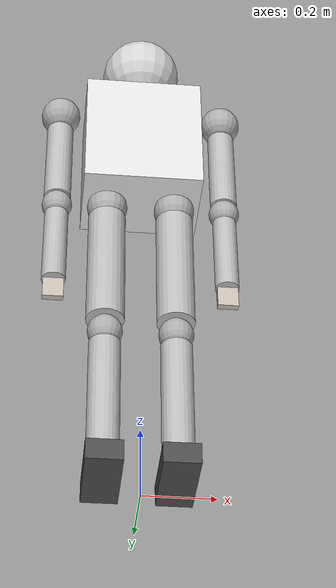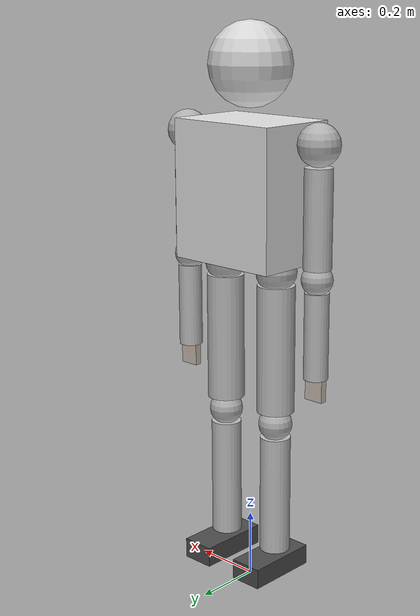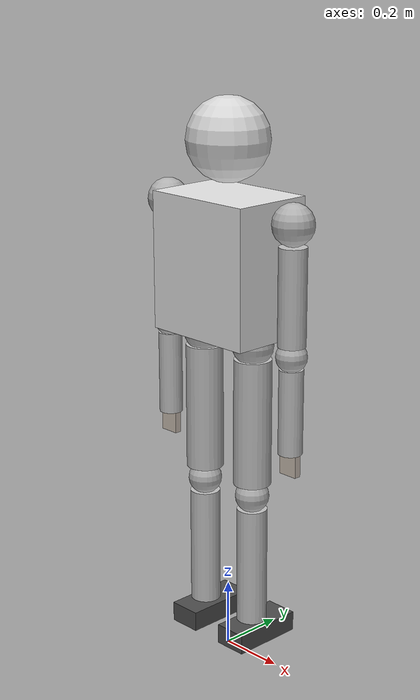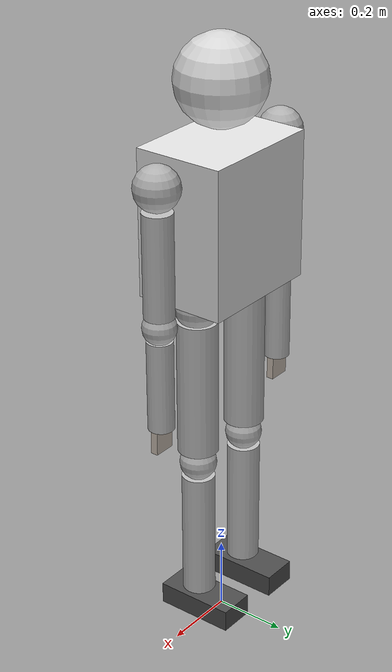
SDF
<?xml version="1.0" ?>
<sdf version="1.8">
  <model name="humanoid_robot">
    <static>false</static>
    <self_collide>true</self_collide>

    <!-- ===== TORSO (base link) ===== -->
    <link name="torso">
      <pose>0 0 1.2 0 0 0</pose>
      <inertial>
        <mass>25.0</mass>
        <inertia>
          <ixx>0.5</ixx><iyy>0.4</iyy><izz>0.3</izz>
          <ixy>0</ixy><ixz>0</ixz><iyz>0</iyz>
        </inertia>
      </inertial>
      <visual name="torso_visual">
        <geometry><box><size>0.35 0.25 0.4</size></box></geometry>
        <material>
          <ambient>0.9 0.9 0.9 1</ambient>
          <diffuse>0.9 0.9 0.9 1</diffuse>
        </material>
      </visual>
      <collision name="torso_collision">
        <geometry><box><size>0.35 0.25 0.4</size></box></geometry>
      </collision>
    </link>

    <!-- ===== HEAD ===== -->
    <link name="head">
      <pose>0 0 1.55 0 0 0</pose>
      <inertial>
        <mass>2.0</mass>
        <inertia><ixx>0.01</ixx><iyy>0.01</iyy><izz>0.01</izz></inertia>
      </inertial>
      <visual name="head_visual">
        <geometry><sphere><radius>0.12</radius></sphere></geometry>
        <material><ambient>0.85 0.85 0.85 1</ambient></material>
      </visual>
      <collision name="head_collision">
        <geometry><sphere><radius>0.12</radius></sphere></geometry>
      </collision>
    </link>

    <joint name="neck" type="revolute">
      <parent>torso</parent>
      <child>head</child>
      <pose>0 0 0.2 0 0 0</pose>
      <axis>
        <xyz>0 1 0</xyz>
        <limit><lower>-0.5</lower><upper>0.5</upper><effort>10</effort><velocity>1.0</velocity></limit>
      </axis>
      <axis2>
        <xyz>0 0 1</xyz>
        <limit><lower>-1.0</lower><upper>1.0</upper><effort>10</effort><velocity>1.0</velocity></limit>
      </axis2>
    </joint>

    <!-- ===== LEFT ARM ===== -->
    <link name="left_shoulder">
      <pose>-0.25 0 1.35 0 0 0</pose>
      <inertial>
        <mass>1.5</mass>
        <inertia><ixx>0.005</ixx><iyy>0.005</iyy><izz>0.005</izz></inertia>
      </inertial>
      <visual name="visual">
        <geometry><sphere><radius>0.06</radius></sphere></geometry>
        <material><ambient>0.7 0.7 0.7 1</ambient></material>
      </visual>
      <collision name="collision">
        <geometry><sphere><radius>0.06</radius></sphere></geometry>
      </collision>
    </link>

    <link name="left_upper_arm">
      <pose>-0.25 0 1.15 0 0 0</pose>
      <inertial>
        <mass>2.0</mass>
        <inertia><ixx>0.02</ixx><iyy>0.02</iyy><izz>0.005</izz></inertia>
      </inertial>
      <visual name="visual">
        <geometry><cylinder><radius>0.04</radius><length>0.28</length></cylinder></geometry>
        <material><ambient>0.75 0.75 0.75 1</ambient></material>
      </visual>
      <collision name="collision">
        <geometry><cylinder><radius>0.04</radius><length>0.28</length></cylinder></geometry>
      </collision>
    </link>

    <link name="left_elbow">
      <pose>-0.25 0 0.98 0 0 0</pose>
      <inertial>
        <mass>0.5</mass>
        <inertia><ixx>0.001</ixx><iyy>0.001</iyy><izz>0.001</izz></inertia>
      </inertial>
      <visual name="visual">
        <geometry><sphere><radius>0.045</radius></sphere></geometry>
        <material><ambient>0.7 0.7 0.7 1</ambient></material>
      </visual>
      <collision name="collision">
        <geometry><sphere><radius>0.045</radius></sphere></geometry>
      </collision>
    </link>

    <link name="left_forearm">
      <pose>-0.25 0 0.82 0 0 0</pose>
      <inertial>
        <mass>1.5</mass>
        <inertia><ixx>0.015</ixx><iyy>0.015</iyy><izz>0.003</izz></inertia>
      </inertial>
      <visual name="visual">
        <geometry><cylinder><radius>0.035</radius><length>0.25</length></cylinder></geometry>
        <material><ambient>0.75 0.75 0.75 1</ambient></material>
      </visual>
      <collision name="collision">
        <geometry><cylinder><radius>0.035</radius><length>0.25</length></cylinder></geometry>
      </collision>
    </link>

    <link name="left_hand">
      <pose>-0.25 0 0.67 0 0 0</pose>
      <inertial>
        <mass>0.4</mass>
        <inertia><ixx>0.001</ixx><iyy>0.001</iyy><izz>0.001</izz></inertia>
      </inertial>
      <visual name="visual">
        <geometry><box><size>0.06 0.02 0.08</size></box></geometry>
        <material><ambient>0.8 0.75 0.7 1</ambient></material>
      </visual>
      <collision name="collision">
        <geometry><box><size>0.06 0.02 0.08</size></box></geometry>
      </collision>
    </link>

    <!-- Left arm joints -->
    <joint name="left_shoulder_pitch" type="revolute">
      <parent>torso</parent><child>left_shoulder</child>
      <pose>-0.08 0 0.15 0 0 0</pose>
      <axis><xyz>0 1 0</xyz>
        <limit><lower>-3.14</lower><upper>3.14</upper><effort>50</effort><velocity>2.0</velocity></limit>
      </axis>
    </joint>
    <joint name="left_shoulder_to_arm" type="fixed">
      <parent>left_shoulder</parent><child>left_upper_arm</child>
    </joint>
    <joint name="left_elbow_pitch" type="revolute">
      <parent>left_upper_arm</parent><child>left_elbow</child>
      <axis><xyz>0 1 0</xyz>
        <limit><lower>-2.35</lower><upper>2.35</upper><effort>30</effort><velocity>2.0</velocity></limit>
      </axis>
    </joint>
    <joint name="left_elbow_to_forearm" type="fixed">
      <parent>left_elbow</parent><child>left_forearm</child>
    </joint>
    <joint name="left_wrist" type="revolute">
      <parent>left_forearm</parent><child>left_hand</child>
      <axis><xyz>1 0 0</xyz>
        <limit><lower>-1.57</lower><upper>1.57</upper><effort>10</effort><velocity>3.0</velocity></limit>
      </axis>
    </joint>

    <!-- ===== RIGHT ARM (mirror of left) ===== -->
    <link name="right_shoulder">
      <pose>0.25 0 1.35 0 0 0</pose>
      <inertial><mass>1.5</mass><inertia><ixx>0.005</ixx><iyy>0.005</iyy><izz>0.005</izz></inertia></inertial>
      <visual name="visual"><geometry><sphere><radius>0.06</radius></sphere></geometry><material><ambient>0.7 0.7 0.7 1</ambient></material></visual>
      <collision name="collision"><geometry><sphere><radius>0.06</radius></sphere></geometry></collision>
    </link>
    <link name="right_upper_arm">
      <pose>0.25 0 1.15 0 0 0</pose>
      <inertial><mass>2.0</mass><inertia><ixx>0.02</ixx><iyy>0.02</iyy><izz>0.005</izz></inertia></inertial>
      <visual name="visual"><geometry><cylinder><radius>0.04</radius><length>0.28</length></cylinder></geometry><material><ambient>0.75 0.75 0.75 1</ambient></material></visual>
      <collision name="collision"><geometry><cylinder><radius>0.04</radius><length>0.28</length></cylinder></geometry></collision>
    </link>
    <link name="right_elbow">
      <pose>0.25 0 0.98 0 0 0</pose>
      <inertial><mass>0.5</mass><inertia><ixx>0.001</ixx><iyy>0.001</iyy><izz>0.001</izz></inertia></inertial>
      <visual name="visual"><geometry><sphere><radius>0.045</radius></sphere></geometry><material><ambient>0.7 0.7 0.7 1</ambient></material></visual>
      <collision name="collision"><geometry><sphere><radius>0.045</radius></sphere></geometry></collision>
    </link>
    <link name="right_forearm">
      <pose>0.25 0 0.82 0 0 0</pose>
      <inertial><mass>1.5</mass><inertia><ixx>0.015</ixx><iyy>0.015</iyy><izz>0.003</izz></inertia></inertial>
      <visual name="visual"><geometry><cylinder><radius>0.035</radius><length>0.25</length></cylinder></geometry><material><ambient>0.75 0.75 0.75 1</ambient></material></visual>
      <collision name="collision"><geometry><cylinder><radius>0.035</radius><length>0.25</length></cylinder></geometry></collision>
    </link>
    <link name="right_hand">
      <pose>0.25 0 0.67 0 0 0</pose>
      <inertial><mass>0.4</mass><inertia><ixx>0.001</ixx><iyy>0.001</iyy><izz>0.001</izz></inertia></inertial>
      <visual name="visual"><geometry><box><size>0.06 0.02 0.08</size></box></geometry><material><ambient>0.8 0.75 0.7 1</ambient></material></visual>
      <collision name="collision"><geometry><box><size>0.06 0.02 0.08</size></box></geometry></collision>
    </link>

    <joint name="right_shoulder_pitch" type="revolute">
      <parent>torso</parent><child>right_shoulder</child>
      <pose>0.08 0 0.15 0 0 0</pose>
      <axis><xyz>0 1 0</xyz>
        <limit><lower>-3.14</lower><upper>3.14</upper><effort>50</effort><velocity>2.0</velocity></limit>
      </axis>
    </joint>
    <joint name="right_shoulder_to_arm" type="fixed">
      <parent>right_shoulder</parent><child>right_upper_arm</child>
    </joint>
    <joint name="right_elbow_pitch" type="revolute">
      <parent>right_upper_arm</parent><child>right_elbow</child>
      <axis><xyz>0 1 0</xyz>
        <limit><lower>-2.35</lower><upper>2.35</upper><effort>30</effort><velocity>2.0</velocity></limit>
      </axis>
    </joint>
    <joint name="right_elbow_to_forearm" type="fixed">
      <parent>right_elbow</parent><child>right_forearm</child>
    </joint>
    <joint name="right_wrist" type="revolute">
      <parent>right_forearm</parent><child>right_hand</child>
      <axis><xyz>1 0 0</xyz>
        <limit><lower>-1.57</lower><upper>1.57</upper><effort>10</effort><velocity>3.0</velocity></limit>
      </axis>
    </joint>

    <!-- ===== LEFT LEG ===== -->
    <link name="left_hip">
      <pose>-0.1 0 0.98 0 0 0</pose>
      <inertial><mass>1.0</mass><inertia><ixx>0.003</ixx><iyy>0.003</iyy><izz>0.003</izz></inertia></inertial>
      <visual name="visual"><geometry><sphere><radius>0.06</radius></sphere></geometry><material><ambient>0.7 0.7 0.7 1</ambient></material></visual>
      <collision name="collision"><geometry><sphere><radius>0.06</radius></sphere></geometry></collision>
    </link>
    <link name="left_thigh">
      <pose>-0.1 0 0.75 0 0 0</pose>
      <inertial><mass>4.0</mass><inertia><ixx>0.05</ixx><iyy>0.05</iyy><izz>0.01</izz></inertia></inertial>
      <visual name="visual"><geometry><cylinder><radius>0.055</radius><length>0.38</length></cylinder></geometry><material><ambient>0.75 0.75 0.75 1</ambient></material></visual>
      <collision name="collision"><geometry><cylinder><radius>0.055</radius><length>0.38</length></cylinder></geometry></collision>
    </link>
    <link name="left_knee">
      <pose>-0.1 0 0.52 0 0 0</pose>
      <inertial><mass>0.5</mass><inertia><ixx>0.001</ixx><iyy>0.001</iyy><izz>0.001</izz></inertia></inertial>
      <visual name="visual"><geometry><sphere><radius>0.05</radius></sphere></geometry><material><ambient>0.7 0.7 0.7 1</ambient></material></visual>
      <collision name="collision"><geometry><sphere><radius>0.05</radius></sphere></geometry></collision>
    </link>
    <link name="left_shin">
      <pose>-0.1 0 0.3 0 0 0</pose>
      <inertial><mass>3.0</mass><inertia><ixx>0.04</ixx><iyy>0.04</iyy><izz>0.008</izz></inertia></inertial>
      <visual name="visual"><geometry><cylinder><radius>0.045</radius><length>0.36</length></cylinder></geometry><material><ambient>0.75 0.75 0.75 1</ambient></material></visual>
      <collision name="collision"><geometry><cylinder><radius>0.045</radius><length>0.36</length></cylinder></geometry></collision>
    </link>
    <link name="left_foot">
      <pose>-0.1 0.02 0.08 0 0 0</pose>
      <inertial><mass>1.0</mass><inertia><ixx>0.003</ixx><iyy>0.005</iyy><izz>0.005</izz></inertia></inertial>
      <visual name="visual"><geometry><box><size>0.1 0.22 0.06</size></box></geometry><material><ambient>0.3 0.3 0.3 1</ambient></material></visual>
      <collision name="collision"><geometry><box><size>0.1 0.22 0.06</size></box></geometry></collision>
    </link>

    <joint name="left_hip_pitch" type="revolute">
      <parent>torso</parent><child>left_hip</child>
      <pose>-0.05 0 -0.02 0 0 0</pose>
      <axis><xyz>0 1 0</xyz>
        <limit><lower>-1.57</lower><upper>1.57</upper><effort>100</effort><velocity>2.0</velocity></limit>
      </axis>
    </joint>
    <joint name="left_hip_to_thigh" type="fixed"><parent>left_hip</parent><child>left_thigh</child></joint>
    <joint name="left_knee_pitch" type="revolute">
      <parent>left_thigh</parent><child>left_knee</child>
      <axis><xyz>0 1 0</xyz>
        <limit><lower>-2.35</lower><upper>0.05</upper><effort>100</effort><velocity>2.0</velocity></limit>
      </axis>
    </joint>
    <joint name="left_knee_to_shin" type="fixed"><parent>left_knee</parent><child>left_shin</child></joint>
    <joint name="left_ankle_pitch" type="revolute">
      <parent>left_shin</parent><child>left_foot</child>
      <axis><xyz>0 1 0</xyz>
        <limit><lower>-0.5</lower><upper>0.5</upper><effort>50</effort><velocity>2.0</velocity></limit>
      </axis>
    </joint>

    <!-- ===== RIGHT LEG (mirror) ===== -->
    <link name="right_hip">
      <pose>0.1 0 0.98 0 0 0</pose>
      <inertial><mass>1.0</mass><inertia><ixx>0.003</ixx><iyy>0.003</iyy><izz>0.003</izz></inertia></inertial>
      <visual name="visual"><geometry><sphere><radius>0.06</radius></sphere></geometry><material><ambient>0.7 0.7 0.7 1</ambient></material></visual>
      <collision name="collision"><geometry><sphere><radius>0.06</radius></sphere></geometry></collision>
    </link>
    <link name="right_thigh">
      <pose>0.1 0 0.75 0 0 0</pose>
      <inertial><mass>4.0</mass><inertia><ixx>0.05</ixx><iyy>0.05</iyy><izz>0.01</izz></inertia></inertial>
      <visual name="visual"><geometry><cylinder><radius>0.055</radius><length>0.38</length></cylinder></geometry><material><ambient>0.75 0.75 0.75 1</ambient></material></visual>
      <collision name="collision"><geometry><cylinder><radius>0.055</radius><length>0.38</length></cylinder></geometry></collision>
    </link>
    <link name="right_knee">
      <pose>0.1 0 0.52 0 0 0</pose>
      <inertial><mass>0.5</mass><inertia><ixx>0.001</ixx><iyy>0.001</iyy><izz>0.001</izz></inertia></inertial>
      <visual name="visual"><geometry><sphere><radius>0.05</radius></sphere></geometry><material><ambient>0.7 0.7 0.7 1</ambient></material></visual>
      <collision name="collision"><geometry><sphere><radius>0.05</radius></sphere></geometry></collision>
    </link>
    <link name="right_shin">
      <pose>0.1 0 0.3 0 0 0</pose>
      <inertial><mass>3.0</mass><inertia><ixx>0.04</ixx><iyy>0.04</iyy><izz>0.008</izz></inertia></inertial>
      <visual name="visual"><geometry><cylinder><radius>0.045</radius><length>0.36</length></cylinder></geometry><material><ambient>0.75 0.75 0.75 1</ambient></material></visual>
      <collision name="collision"><geometry><cylinder><radius>0.045</radius><length>0.36</length></cylinder></geometry></collision>
    </link>
    <link name="right_foot">
      <pose>0.1 0.02 0.08 0 0 0</pose>
      <inertial><mass>1.0</mass><inertia><ixx>0.003</ixx><iyy>0.005</iyy><izz>0.005</izz></inertia></inertial>
      <visual name="visual"><geometry><box><size>0.1 0.22 0.06</size></box></geometry><material><ambient>0.3 0.3 0.3 1</ambient></material></visual>
      <collision name="collision"><geometry><box><size>0.1 0.22 0.06</size></box></geometry></collision>
    </link>

    <joint name="right_hip_pitch" type="revolute">
      <parent>torso</parent><child>right_hip</child>
      <pose>0.05 0 -0.02 0 0 0</pose>
      <axis><xyz>0 1 0</xyz>
        <limit><lower>-1.57</lower><upper>1.57</upper><effort>100</effort><velocity>2.0</velocity></limit>
      </axis>
    </joint>
    <joint name="right_hip_to_thigh" type="fixed"><parent>right_hip</parent><child>right_thigh</child></joint>
    <joint name="right_knee_pitch" type="revolute">
      <parent>right_thigh</parent><child>right_knee</child>
      <axis><xyz>0 1 0</xyz>
        <limit><lower>-2.35</lower><upper>0.05</upper><effort>100</effort><velocity>2.0</velocity></limit>
      </axis>
    </joint>
    <joint name="right_knee_to_shin" type="fixed"><parent>right_knee</parent><child>right_shin</child></joint>
    <joint name="right_ankle_pitch" type="revolute">
      <parent>right_shin</parent><child>right_foot</child>
      <axis><xyz>0 1 0</xyz>
        <limit><lower>-0.5</lower><upper>0.5</upper><effort>50</effort><velocity>2.0</velocity></limit>
      </axis>
    </joint>

    <!-- ===== PLUGINS ===== -->
    <!-- Joint state publisher -->
    <plugin filename="gz-sim-joint-state-publisher-system" name="gz::sim::systems::JointStatePublisher">
      <joint_name>neck</joint_name>
      <joint_name>left_shoulder_pitch</joint_name>
      <joint_name>left_elbow_pitch</joint_name>
      <joint_name>left_wrist</joint_name>
      <joint_name>right_shoulder_pitch</joint_name>
      <joint_name>right_elbow_pitch</joint_name>
      <joint_name>right_wrist</joint_name>
      <joint_name>left_hip_pitch</joint_name>
      <joint_name>left_knee_pitch</joint_name>
      <joint_name>left_ankle_pitch</joint_name>
      <joint_name>right_hip_pitch</joint_name>
      <joint_name>right_knee_pitch</joint_name>
      <joint_name>right_ankle_pitch</joint_name>
    </plugin>

    <!-- Apply force/torque to joints (Week 3: basic joint control) -->
    <plugin filename="gz-sim-joint-controller-system" name="gz::sim::systems::JointController">
      <joint_name>left_elbow_pitch</joint_name>
      <joint_name>right_elbow_pitch</joint_name>
      <joint_name>left_shoulder_pitch</joint_name>
      <joint_name>right_shoulder_pitch</joint_name>
    </plugin>

  </model>
</sdf>
